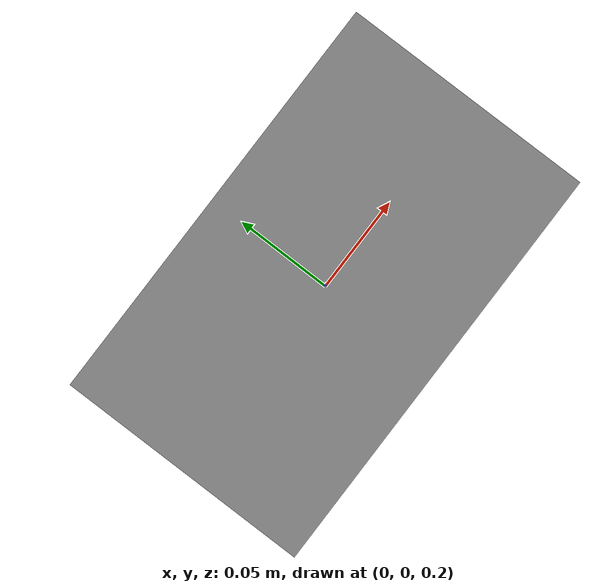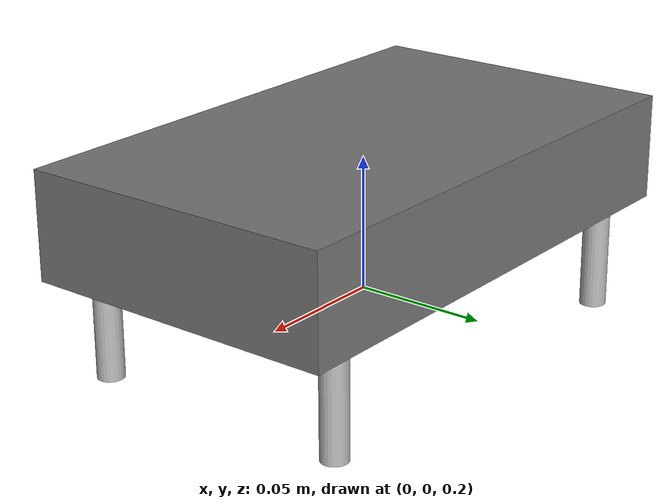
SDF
<?xml version="1.0" ?>
<sdf version="1.7">
  <model name="mainboard">
    <link name="boarder">
        <pose>0.0 0.0 0.24 0.0 0.0 0.0</pose>
        <collision name="collision">
          <geometry>
            <box>
              <size>.2 .12 .04</size>
            </box>
          </geometry>
        </collision>

        <visual name="visual">
          <geometry>
            <box>
              <size>.2 .12 .04</size>
            </box>
          </geometry>
           <material>
             <ambient>0.46 0.46 0.46 1.0</ambient>
             <diffuse>0.46 0.46 0.46 1.0</diffuse>
             <specular>0.46 0.46 0.46 1.0</specular>
             <emissive>0.46 0.46 0.46 1.0</emissive>
           </material>
        </visual>
      </link>

    <link name="boardleg_fl">
        <pose>-0.08 0.05 0.2 0.0 0.0 0.0</pose>
        <collision name="collision">
          <geometry>
            <cylinder>
              <radius>.005</radius>
              <length>.04</length>
            </cylinder>
          </geometry>
        </collision>

        <visual name="visual">
          <geometry>
            <cylinder>
              <radius>.005</radius>
              <length>.04</length>
            </cylinder>
          </geometry>
        </visual>
      </link>
      <joint name="leg_fl_joint" type="fixed">
        <child>boardleg_fl</child>
        <parent>boarder</parent>
      </joint>

      <link name="boardleg_fr">
        <pose>-0.08 -0.05 0.2 0.0 0.0 0.0</pose>
        <collision name="collision">
          <geometry>
            <cylinder>
              <radius>.005</radius>
              <length>.04</length>
            </cylinder>
          </geometry>
        </collision>

        <visual name="visual">
          <geometry>
            <cylinder>
              <radius>.005</radius>
              <length>.04</length>
            </cylinder>
          </geometry>
        </visual>
      </link>
      <joint name="leg_fr_joint" type="fixed">
        <child>boardleg_fr</child>
        <parent>boarder</parent>
      </joint>

      <link name="boardleg_bl">
        <pose>0.08 0.05 0.2 0.0 0.0 0.0</pose>
        <collision name="collision">
          <geometry>
            <cylinder>
              <radius>.005</radius>
              <length>.04</length>
            </cylinder>
          </geometry>
        </collision>

        <visual name="visual">
          <geometry>
            <cylinder>
              <radius>.005</radius>
              <length>.04</length>
            </cylinder>
          </geometry>
        </visual>
      </link>
      <joint name="leg_bl_joint" type="fixed">
        <child>boardleg_bl</child>
        <parent>boarder</parent>
      </joint>

      <link name="boardleg_br">
        <pose>0.08 -0.05 0.2 0.0 0.0 0.0</pose>
        <collision name="collision">
          <geometry>
            <cylinder>
              <radius>.005</radius>
              <length>.04</length>
            </cylinder>
          </geometry>
        </collision>

        <visual name="visual">
          <geometry>
            <cylinder>
              <radius>.005</radius>
              <length>.04</length>
            </cylinder>
          </geometry>
        </visual>
      </link>
      <joint name="leg_br_joint" type="fixed">
        <child>boardleg_br</child>
        <parent>boarder</parent>
      </joint>

  </model>
</sdf>
